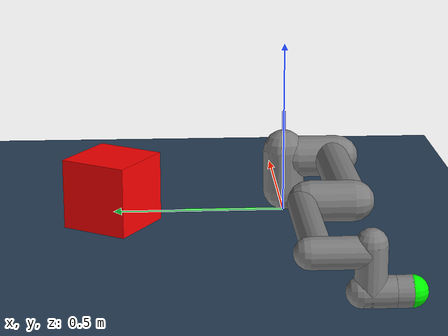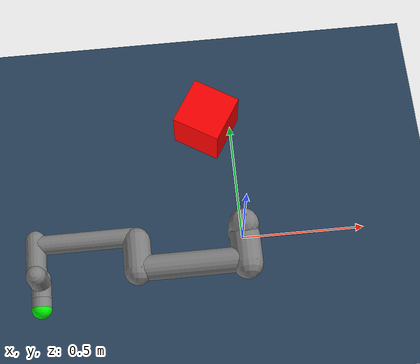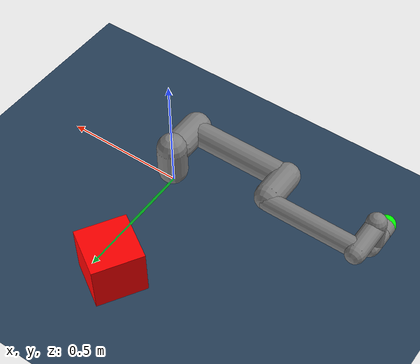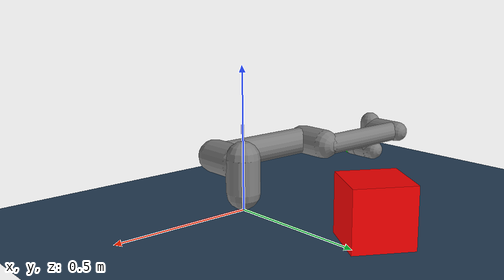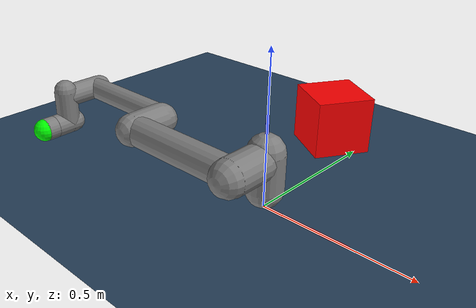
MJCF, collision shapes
<!-- 场景配置文件 -->
<mujoco model="ur5e scene">
  <include file="ur5e.xml"/>

  <visual>
    <headlight diffuse="0.6 0.6 0.6" ambient="0.1 0.1 0.1" specular="0 0 0"/>
    <rgba haze="0.15 0.25 0.35 1"/>
    <global azimuth="120" elevation="-20"/>
  </visual>

  <asset>
    <texture type="skybox" builtin="gradient" rgb1="0.3 0.5 0.7" rgb2="0 0 0" width="512" height="3072"/>
    <texture type="2d" name="groundplane" builtin="checker" mark="edge" rgb1="0.2 0.3 0.4" rgb2="0.1 0.2 0.3"
      markrgb="0.8 0.8 0.8" width="300" height="300"/>
    <material name="groundplane" texture="groundplane" texuniform="true" texrepeat="5 5" reflectance="0.2"/>
  </asset>

  <worldbody>
    <light pos="0 0 1.5" dir="0 0 -1" directional="true"/>
    <geom name="floor" size="0 0 0.05" type="plane" material="groundplane"/>

    <body name="world_frame" pos="0 0 0">
        <geom name="X" type="cylinder" size="0.005" fromto="0 0 0 0.3 0 0" rgba="1 0 0 1" contype="0"
              conaffinity="0"/>
        <geom name="Y" type="cylinder" size="0.005" fromto="0 0 0 0 0.3 0" rgba="0 1 0 1" contype="0"
              conaffinity="0"/>
        <geom name="Z" type="cylinder" size="0.005" fromto="0 0 0 0 0 0.3" rgba="0 0 1 1" contype="0"
              conaffinity="0"/>
    </body>

    <body name="red_box" pos="-0.1 0.5 0.1" euler="0 0 45">
        <joint name="red_box_joint" type="free"/>
        <geom name="red_box_geom" type="box" size="0.1 0.1 0.1" rgba="1 0 0 1" mass="1.0"/>
    </body>
  </worldbody>
</mujoco>

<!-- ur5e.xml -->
<mujoco model="ur5e">
  <!-- 全局编译与求解器设置 -->
  <compiler angle="radian" meshdir="assets" autolimits="true"/>

  <option integrator="implicitfast"/>

  <!-- 参数模板 -->
  <default>
    <default class="ur5e">
      <material specular="0.5" shininess="0.25"/>
      <joint axis="0 1 0" range="-6.28319 6.28319" armature="0.1"/>
      <general gaintype="fixed" biastype="affine" ctrlrange="-6.2831 6.2831" gainprm="2000" biasprm="0 -2000 -400"
        forcerange="-150 150"/>
      <default class="size3">
        <default class="size3_limited">
          <joint range="-3.1415 3.1415"/>
          <general ctrlrange="-3.1415 3.1415"/>
        </default>
      </default>
      <default class="size1">
        <general gainprm="500" biasprm="0 -500 -100" forcerange="-28 28"/>
      </default>
      <default class="visual">
        <geom type="mesh" contype="0" conaffinity="0" group="2"/>
      </default>
      <default class="collision">
        <geom type="capsule" group="3"/>
        <default class="eef_collision">
          <geom type="cylinder"/>
        </default>
      </default>
      <site size="0.001" rgba="0.5 0.5 0.5 0.3" group="4"/>
    </default>
  </default>

  <!-- 材质 + 网格模型文件 -->
  <asset>
    <material class="ur5e" name="black" rgba="0.033 0.033 0.033 1"/>
    <material class="ur5e" name="jointgray" rgba="0.278 0.278 0.278 1"/>
    <material class="ur5e" name="linkgray" rgba="0.82 0.82 0.82 1"/>
    <material class="ur5e" name="urblue" rgba="0.49 0.678 0.8 1"/>

    <mesh file="base_0.obj"/>
    <mesh file="base_1.obj"/>
    <mesh file="shoulder_0.obj"/>
    <mesh file="shoulder_1.obj"/>
    <mesh file="shoulder_2.obj"/>
    <mesh file="upperarm_0.obj"/>
    <mesh file="upperarm_1.obj"/>
    <mesh file="upperarm_2.obj"/>
    <mesh file="upperarm_3.obj"/>
    <mesh file="forearm_0.obj"/>
    <mesh file="forearm_1.obj"/>
    <mesh file="forearm_2.obj"/>
    <mesh file="forearm_3.obj"/>
    <mesh file="wrist1_0.obj"/>
    <mesh file="wrist1_1.obj"/>
    <mesh file="wrist1_2.obj"/>
    <mesh file="wrist2_0.obj"/>
    <mesh file="wrist2_1.obj"/>
    <mesh file="wrist2_2.obj"/>
    <mesh file="wrist3.obj"/>
  </asset>

  <!-- 机器人本体（body 树） -->
  <worldbody>
      <light name="spotlight" mode="targetbodycom" target="wrist_2_link" pos="0 -1 2"/>
      <body name="base" quat="0 0 0 -1" childclass="ur5e">
          <inertial mass="4.0" pos="0 0 0" diaginertia="0.00443333156 0.00443333156 0.0072"/>
          <geom mesh="base_0" material="black" class="visual"/>
          <geom mesh="base_1" material="jointgray" class="visual"/>
          <body name="shoulder_link" pos="0 0 0.163">
              <inertial mass="3.7" pos="0 0 0" diaginertia="0.0102675 0.0102675 0.00666"/>
              <joint name="shoulder_pan_joint" class="size3" axis="0 0 1"/>
              <geom mesh="shoulder_0" material="urblue" class="visual"/>
              <geom mesh="shoulder_1" material="black" class="visual"/>
              <geom mesh="shoulder_2" material="jointgray" class="visual"/>
              <geom class="collision" size="0.06 0.06" pos="0 0 -0.04"/>
              <body name="upper_arm_link" pos="0 0.138 0" quat="1 0 1 0">
                  <inertial mass="8.393" pos="0 0 0.2125" diaginertia="0.133886 0.133886 0.0151074"/>
                  <joint name="shoulder_lift_joint" class="size3"/>
                  <geom mesh="upperarm_0" material="linkgray" class="visual"/>
                  <geom mesh="upperarm_1" material="black" class="visual"/>
                  <geom mesh="upperarm_2" material="jointgray" class="visual"/>
                  <geom mesh="upperarm_3" material="urblue" class="visual"/>
                  <geom class="collision" pos="0 -0.04 0" quat="1 1 0 0" size="0.06 0.06"/>
                  <geom class="collision" size="0.05 0.2" pos="0 0 0.2"/>
                  <body name="forearm_link" pos="0 -0.131 0.425">
                      <inertial mass="2.275" pos="0 0 0.196" diaginertia="0.0311796 0.0311796 0.004095"/>
                      <joint name="elbow_joint" class="size3_limited"/>
                      <geom mesh="forearm_0" material="urblue" class="visual"/>
                      <geom mesh="forearm_1" material="linkgray" class="visual"/>
                      <geom mesh="forearm_2" material="black" class="visual"/>
                      <geom mesh="forearm_3" material="jointgray" class="visual"/>
                      <geom class="collision" pos="0 0.08 0" quat="1 1 0 0" size="0.055 0.06"/>
                      <geom class="collision" size="0.038 0.19" pos="0 0 0.2"/>
                      <body name="wrist_1_link" pos="0 0 0.392" quat="1 0 1 0">
                          <inertial mass="1.219" pos="0 0.127 0" diaginertia="0.0025599 0.0025599 0.0021942"/>
                          <joint name="wrist_1_joint" class="size1"/>
                          <geom mesh="wrist1_0" material="black" class="visual"/>
                          <geom mesh="wrist1_1" material="urblue" class="visual"/>
                          <geom mesh="wrist1_2" material="jointgray" class="visual"/>
                          <geom class="collision" pos="0 0.05 0" quat="1 1 0 0" size="0.04 0.07"/>
                          <body name="wrist_2_link" pos="0 0.127 0">
                              <inertial mass="1.219" pos="0 0 0.1" diaginertia="0.0025599 0.0025599 0.0021942"/>
                              <joint name="wrist_2_joint" axis="0 0 1" class="size1"/>
                              <geom mesh="wrist2_0" material="black" class="visual"/>
                              <geom mesh="wrist2_1" material="urblue" class="visual"/>
                              <geom mesh="wrist2_2" material="jointgray" class="visual"/>
                              <geom class="collision" size="0.04 0.06" pos="0 0 0.04"/>
                              <geom class="collision" pos="0 0.02 0.1" quat="1 1 0 0" size="0.04 0.04"/>
                              <body name="wrist_3_link" pos="0 0 0.1">
                                  <inertial mass="0.1889" pos="0 0.0771683 0" quat="1 0 0 1"
                                            diaginertia="0.000132134 9.90863e-05 9.90863e-05"/>
                                  <joint name="wrist_3_joint" class="size1"/>
                                  <geom material="linkgray" mesh="wrist3" class="visual"/>
                                  <geom class="eef_collision" pos="0 0.08 0" quat="1 1 0 0" size="0.04 0.02"/>
                                  <site name="attachment_site" pos="0 0.1 0" quat="-1 1 0 0"/>

                                  <body name="force_sensor" pos="0 0.1 0" euler="3.14 0 3.14">
                                      <geom name='force_sensor_geom' type="sphere" mass="0.0" size="0.04"
                                            rgba="0 1 0 0.3"/>
                                      <site name="force_sensor_site" pos="0 0 0" quat="1 0 0 0"/>
                                  </body>
                              </body>
                          </body>
                      </body>
                  </body>
              </body>
          </body>
      </body>
  </worldbody>

  <sensor>
    <force site="force_sensor_site"/>
  </sensor>

  <!-- 关节电机 -->
  <actuator>
    <general class="size3" name="shoulder_pan" joint="shoulder_pan_joint"/>
    <general class="size3" name="shoulder_lift" joint="shoulder_lift_joint"/>
    <general class="size3_limited" name="elbow" joint="elbow_joint"/>
    <general class="size1" name="wrist_1" joint="wrist_1_joint"/>
    <general class="size1" name="wrist_2" joint="wrist_2_joint"/>
    <general class="size1" name="wrist_3" joint="wrist_3_joint"/>
  </actuator>

  <!-- 初始姿态设置 -->
</mujoco>
